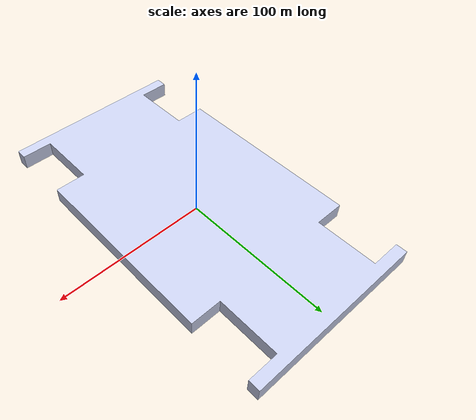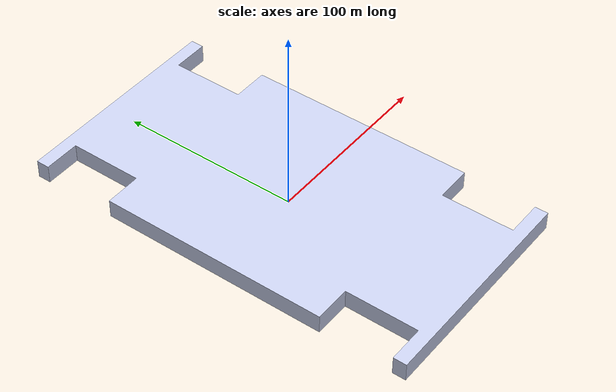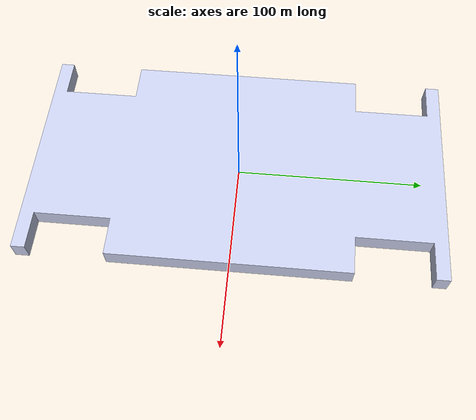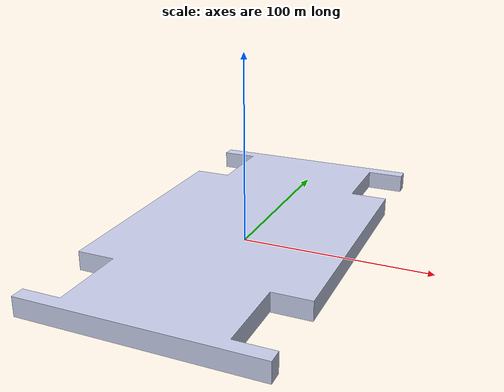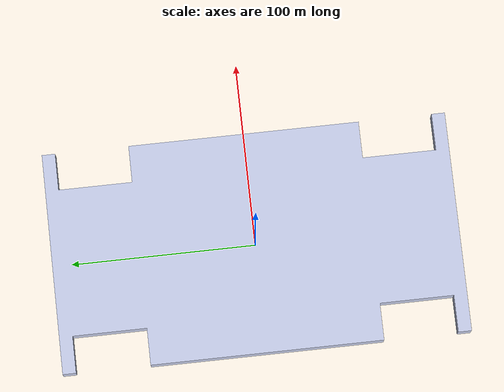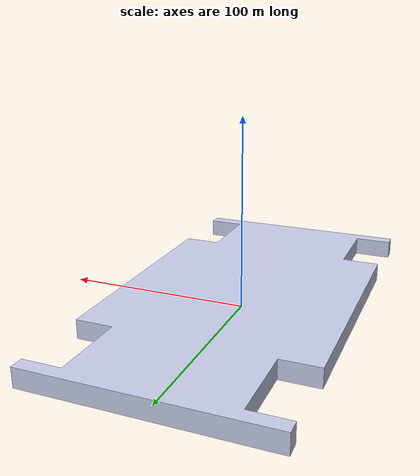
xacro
<robot xmlns:xacro="http://www.ros.org/wiki/xacro" name="quad_robot">

  <xacro:macro name="motor" params="name x y z ixx ixy ixz iyy iyz izz file jx jy jz jroll jpitch jyaw">
    <link name="${name}">
      <inertial>
        <origin xyz="${x} ${y} ${z}" rpy="0 0 0"/>
        <mass value="0.0102591079722968"/>
        <inertia ixx="${ixx}" ixy="${ixy}" ixz="${ixz}" iyy="${iyy}" iyz="${iyz}" izz="${izz}"/>
      </inertial>
      <visual>
        <origin xyz="0 0 0" rpy="0 0 0"/>
        <geometry>
          <mesh filename="${file}"/>
        </geometry>
        <material name="">
          <color rgba="0.792156862745098 0.819607843137255 0.933333333333333 1"/>
        </material>
      </visual>
      <collision>
        <origin xyz="0 0 0" rpy="0 0 0"/>
        <geometry>
          <mesh filename="${file}"/>
        </geometry>
      </collision>
    </link>

    <joint name="base_link_${name}" type="continuous">
      <origin xyz="${jx} ${jy} ${jz}" rpy="${jroll} ${jpitch} ${jyaw}"/>
      <parent link="base_link"/>
      <child link="${name}"/>
      <axis xyz="0 1 0"/>
    </joint>
  </xacro:macro>

  <link name="base_link">
    <inertial>
      <origin xyz="0.001132448756594 0.000385803098481615 0.162670407152059" rpy="0 0 0"/>
      <mass value="0.840254267046389"/>
      <inertia ixx="0.0080393433482603" ixy="1.02214302839741E-06" ixz="7.02409484644395E-05" iyy="0.00807478868432974" iyz="5.694285545546E-06" izz="0.0140723127325883"/>
    </inertial>
    <visual>
      <origin xyz="0 0 0" rpy="0 0 0"/>
      <geometry>
        <mesh filename="package://quad_description/meshes/base_link.STL"/>
      </geometry>
      <material name="">
        <color rgba="0.792156862745098 0.819607843137255 0.933333333333333 1"/>
      </material>
    </visual>
    <collision>
      <origin xyz="0 0 0" rpy="0 0 0"/>
      <geometry>
        <mesh filename="package://quad_description/meshes/base_link.STL"/>
      </geometry>
    </collision>
  </link>

  <!-- Add the quad parameters based on your specific model -->
  <xacro:motor
    name="prop_left_back"
    x="4.6215470089761E-08"
    y="0.0185576795212508"
    z="-2.14472247989095E-07"
    ixx="2.65331616278177E-07"
    ixy="3.91278771287575E-13"
    ixz="4.81989725544736E-16"
    iyy="2.56820799820415E-15"
    iyz="-2.15280193998034E-12"
    izz="2.65331613897853E-07"
    file="package://quad_description/meshes/Link1.STL"
    jx="-0.176124443135205"
    jy="-0.178787876216547"
    jz="0.19801927995734"
    jroll="1.5707963267949"
    jpitch="1.52181408478657E-17"
    jyaw="0.251171953074523"/>

  <xacro:motor
    name="prop_right_back"
    x="-2.00113389969836E-07"
    y="0.0185577330072202"
    z="-8.9052632212816E-08"
    ixx="2.65332611333388E-07"
    ixy="-2.03072742963355E-12"
    ixz="-9.19263946529207E-16"
    iyy="2.56993825277625E-15"
    iyz="-8.25014750129984E-13"
    izz="2.65332613128908E-07"
    file="package://quad_description/meshes/Link2.STL"
    jx="-0.176054559418305"
    jy="0.178895017978848"
    jz="0.19801927995734"
    jroll="1.5707963267949"
    jpitch="4.98335905490269E-17"
    jyaw="2.19080886047877"/>

  <xacro:motor
    name="prop_left_front"
    x="-2.08922263988942E-07"
    y="0.018557734547937"
    z="6.73178055521362E-08"
    ixx="2.65332606631845E-07"
    ixy="-2.05932903845259E-12"
    ixz="7.89415112586658E-16"
    iyy="2.56769122953722E-15"
    iyz="7.36488142937077E-13"
    izz="2.65332608656656E-07"
    file="package://quad_description/meshes/Link3.STL"
    jx="0.18162833477709"
    jy="0.178825134261949"
    jz="0.19801927995734"
    jroll="1.5707963267949"
    jpitch="1.52181408478657E-17"
    jyaw="0.251171953074523"/>

  <xacro:motor
    name="prop_right_front"
    x="-1.02205847410386E-07"
    y="0.0185577377292006"
    z="-1.93949221849454E-07"
    ixx="2.65332708258588E-07"
    ixy="-1.08376829871117E-12"
    ixz="-1.08772670304881E-15"
    iyy="2.56899137095445E-15"
    iyz="-1.9029061418775E-12"
    izz="2.65332706892347E-07"
    file="package://quad_description/meshes/Link4.STL"
    jx="0.18155845106019"
    jy="-0.178857759933446"
    jz="0.19801927995734"
    jroll="1.5707963267949"
    jpitch="-3.46232409087429E-17"
    jyaw="-2.5406028590227"/>

  <link name="Lidar">
    <inertial>
      <origin xyz="-1.1635066247094E-06 7.46440683850602E-06 -0.0184374226869707" rpy="0 0 0"/>
      <mass value="0.0131789241976587"/>
      <inertia ixx="0" ixy="0" ixz="0" iyy="0" iyz="0" izz="0"/>
    </inertial>
    <visual>
      <origin xyz="0 0 0" rpy="0 0 0"/>
      <geometry>
        <mesh filename="package://quad_description/meshes/Lidar.STL"/>
      </geometry>
      <material name="">
        <color rgba="1 1 1 1"/>
      </material>
    </visual>
    <collision>
      <origin xyz="0 0 0" rpy="0 0 0"/>
      <geometry>
        <mesh filename="package://quad_description/meshes/Lidar.STL"/>
      </geometry>
    </collision>
  </link>

  <joint name="revolute" type="continuous">
    <origin xyz="-0.0189949475112854 0 0.22611927995734" rpy="-3.14159265358979 -5.99575093438171E-17 -1.77504932828959"/>
    <parent link="base_link"/>
    <child link="Lidar"/>
    <axis xyz="0 0 -1"/>
  </joint>

</robot>
